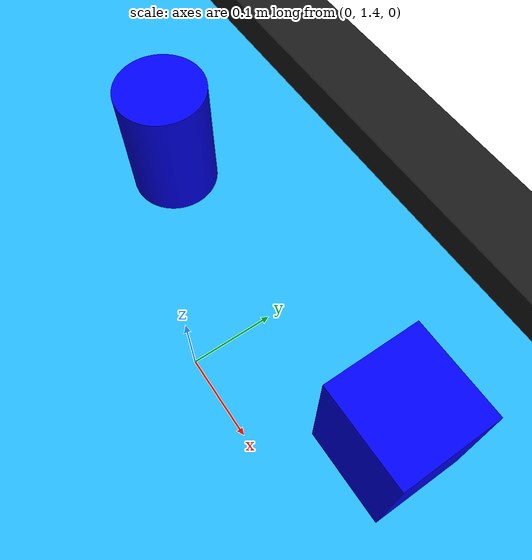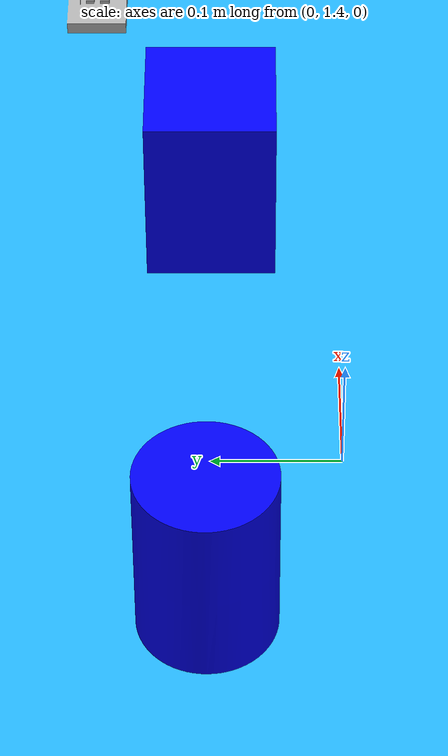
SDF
<sdf version="1.6">
 <world name="default">
  <light name="sun" type="directional">
   <pose>0 0 10 0 -0 0</pose>
   <diffuse>0.8 0.8 0.8 1</diffuse>
   <specular>0.2 0.2 0.2 1</specular>
   <attenuation>
    <range>1000</range>
    <constant>0.9</constant>
    <linear>0.01</linear>
    <quadratic>0.001</quadratic>
   </attenuation>
   <direction>-0.5 0.1 -0.9</direction>
  </light>
  <model name="ground_plane">
   <static>1</static>
   <link name="link">
    <collision name="collision">
     <geometry><plane><normal>0 0 1</normal><size>100 100</size></plane></geometry>
     <surface>
      <contact><collide_bitmask>65535</collide_bitmask></contact>
      <friction><ode><mu>100</mu><mu2>50</mu2></ode></friction>
     </surface>
    </collision>
    <visual name="visual">
     <cast_shadows>0</cast_shadows>
     <geometry><plane><normal>0 0 1</normal><size>100 100</size></plane></geometry>
     <material>
      <script><uri>file://media/materials/scripts/gazebo.material</uri><name>Gazebo/Grey</name></script>
     </material>
    </visual>
   </link>
  </model>
  <gravity>0 0 -9.8</gravity>
  <magnetic_field>6e-06 2.3e-05 -4.2e-05</magnetic_field>
  <atmosphere type="adiabatic"/>
  <physics name="default_physics" default="0" type="ode">
   <max_step_size>0.001</max_step_size>
   <real_time_factor>1</real_time_factor>
   <real_time_update_rate>1000</real_time_update_rate>
  </physics>
  <scene><ambient>0.4 0.4 0.4 1</ambient><background>0.7 0.7 0.7 1</background><shadows>1</shadows></scene>
  <audio><device>default</device></audio>
  <spherical_coordinates>
   <surface_model>EARTH_WGS84</surface_model>
   <latitude_deg>0</latitude_deg>
   <longitude_deg>0</longitude_deg>
   <elevation>0</elevation>
   <heading_deg>0</heading_deg>
  </spherical_coordinates>
  <model name="demo_area">
   <link name="link_0">
    <inertial>
     <mass>1</mass>
     <inertia>
      <ixx>0.166667</ixx>
      <ixy>0</ixy>
      <ixz>0</ixz>
      <iyy>0.166667</iyy>
      <iyz>0</iyz>
      <izz>0.166667</izz>
     </inertia>
    </inertial>
    <self_collide>1</self_collide>
    <kinematic>1</kinematic>
    <visual name="visual">
     <geometry><mesh><uri>model://demo_area/meshes/vrc_demo.dae</uri><scale>1 1 1</scale></mesh></geometry>
    </visual>
    <collision name="collision">
     <geometry><mesh><uri>model://demo_area/meshes/vrc_demo.dae</uri><scale>1 1 1</scale></mesh></geometry>
     <surface>
      <friction>
       <ode><mu>100</mu><mu2>100</mu2><fdir1>0 0 0</fdir1><slip1>0</slip1><slip2>0</slip2></ode>
       <torsional>
        <coefficient>1</coefficient>
        <patch_radius>0</patch_radius>
        <surface_radius>0</surface_radius>
        <use_patch_radius>1</use_patch_radius>
        <ode><slip>0</slip></ode>
       </torsional>
      </friction>
      <bounce><restitution_coefficient>0</restitution_coefficient><threshold>1e+06</threshold></bounce>
      <contact>
       <collide_without_contact>0</collide_without_contact>
       <collide_without_contact_bitmask>1</collide_without_contact_bitmask>
       <collide_bitmask>1</collide_bitmask>
       <ode>
        <soft_cfm>0</soft_cfm>
        <soft_erp>0.2</soft_erp>
        <kp>1e+13</kp>
        <kd>1</kd>
        <max_vel>0.01</max_vel>
        <min_depth>0</min_depth>
       </ode>
       <bullet>
        <split_impulse>1</split_impulse>
        <split_impulse_penetration_threshold>-0.01</split_impulse_penetration_threshold>
        <soft_cfm>0</soft_cfm>
        <soft_erp>0.2</soft_erp>
        <kp>1e+13</kp>
        <kd>1</kd>
       </bullet>
      </contact>
     </surface>
    </collision>
   </link>
   <static>1</static>
  </model>
  <model name="cuboid">
   <link name="link_0">
    <inertial>
     <mass>0.1</mass>
     <inertia>
      <ixx>0.166667</ixx>
      <ixy>0</ixy>
      <ixz>0</ixz>
      <iyy>0.166667</iyy>
      <iyz>0</iyz>
      <izz>0.166667</izz>
     </inertia>
    </inertial>
    <visual name="visual">
     <geometry><mesh><uri>model://cuboid/meshes/cuboid.dae</uri><scale>1 1 1</scale></mesh></geometry>
    </visual>
    <collision name="collision">
     <geometry><mesh><uri>model://cuboid/meshes/cuboid.dae</uri><scale>1 1 1</scale></mesh></geometry>
     <surface>
      <friction>
       <ode><mu>1000</mu><mu2>1000</mu2><fdir1>0 0 0</fdir1><slip1>0</slip1><slip2>0</slip2></ode>
       <torsional>
        <coefficient>1</coefficient>
        <patch_radius>0</patch_radius>
        <surface_radius>0</surface_radius>
        <use_patch_radius>1</use_patch_radius>
        <ode><slip>0</slip></ode>
       </torsional>
      </friction>
      <bounce><restitution_coefficient>0</restitution_coefficient><threshold>1e+06</threshold></bounce>
      <contact>
       <collide_without_contact>0</collide_without_contact>
       <collide_without_contact_bitmask>1</collide_without_contact_bitmask>
       <collide_bitmask>1</collide_bitmask>
       <ode>
        <soft_cfm>0</soft_cfm>
        <soft_erp>0.2</soft_erp>
        <kp>1e+13</kp>
        <kd>1</kd>
        <max_vel>0.01</max_vel>
        <min_depth>0</min_depth>
       </ode>
       <bullet>
        <split_impulse>1</split_impulse>
        <split_impulse_penetration_threshold>-0.01</split_impulse_penetration_threshold>
        <soft_cfm>0</soft_cfm>
        <soft_erp>0.2</soft_erp>
        <kp>1e+13</kp>
        <kd>1</kd>
       </bullet>
      </contact>
     </surface>
    </collision>
   </link>
   <static>0</static>
   <pose>0.2 1.5 0.05 0 -2e-06 0</pose>
  </model>
  <model name="cylinder">
   <link name="link_1">
    <inertial>
     <mass>0.1</mass>
     <inertia>
      <ixx>0.166667</ixx>
      <ixy>0</ixy>
      <ixz>0</ixz>
      <iyy>0.166667</iyy>
      <iyz>0</iyz>
      <izz>0.166667</izz>
     </inertia>
    </inertial>
    <visual name="visual">
     <geometry><mesh><uri>model://cylinder/meshes/cylinder.dae</uri><scale>1 1 1</scale></mesh></geometry>
    </visual>
    <collision name="collision">
     <geometry><mesh><uri>model://cylinder/meshes/cylinder.dae</uri><scale>1 1 1</scale></mesh></geometry>
     <surface>
      <friction>
       <ode><mu>1000</mu><mu2>1000</mu2><fdir1>0 0 0</fdir1><slip1>0</slip1><slip2>0</slip2></ode>
       <torsional>
        <coefficient>1</coefficient>
        <patch_radius>0</patch_radius>
        <surface_radius>0</surface_radius>
        <use_patch_radius>1</use_patch_radius>
        <ode><slip>0</slip></ode>
       </torsional>
      </friction>
      <bounce><restitution_coefficient>0</restitution_coefficient><threshold>1e+06</threshold></bounce>
      <contact>
       <collide_without_contact>0</collide_without_contact>
       <collide_without_contact_bitmask>1</collide_without_contact_bitmask>
       <collide_bitmask>1</collide_bitmask>
       <ode>
        <soft_cfm>0</soft_cfm>
        <soft_erp>0.2</soft_erp>
        <kp>1e+13</kp>
        <kd>1</kd>
        <max_vel>0.01</max_vel>
        <min_depth>0</min_depth>
       </ode>
       <bullet>
        <split_impulse>1</split_impulse>
        <split_impulse_penetration_threshold>-0.01</split_impulse_penetration_threshold>
        <soft_cfm>0</soft_cfm>
        <soft_erp>0.2</soft_erp>
        <kp>1e+13</kp>
        <kd>1</kd>
       </bullet>
      </contact>
     </surface>
    </collision>
   </link>
   <static>0</static>
   <pose>-0.2 1.5 0.049997 0 -1.2e-05 0</pose>
  </model>
 </world>
</sdf>
